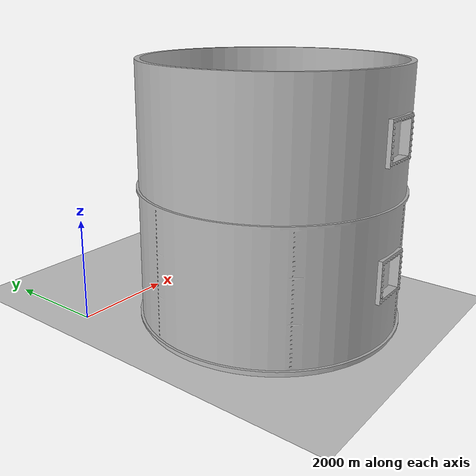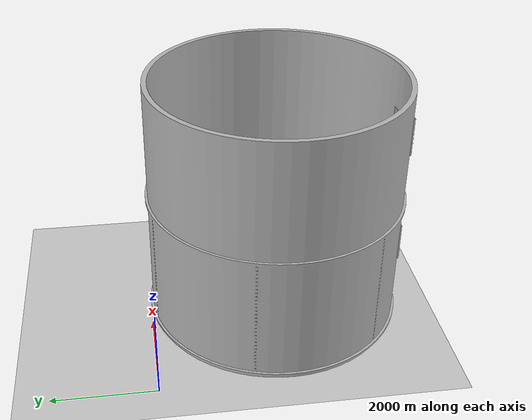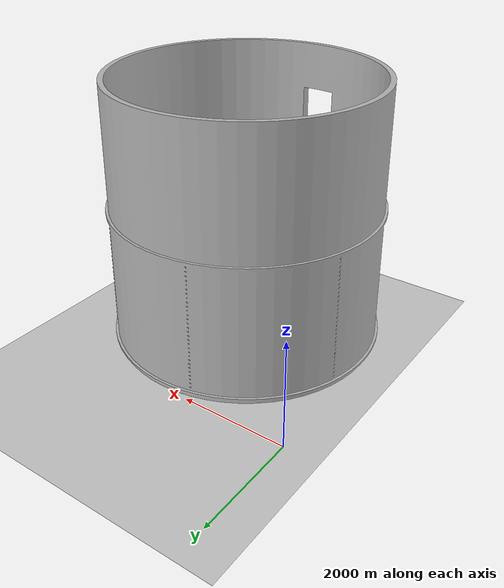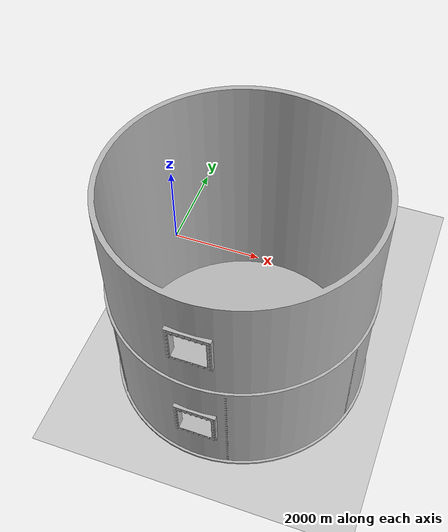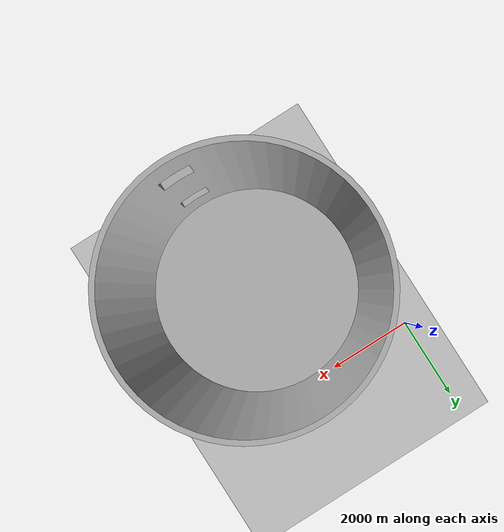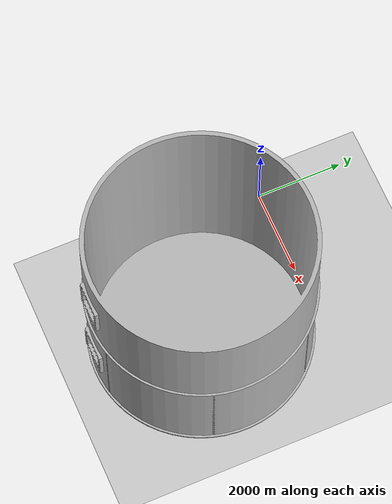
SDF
<sdf version="1.6">
 <world name="default">
  <model name="ground_plane">
   <static>1</static>
   <link name="link">
    <collision name="collision">
     <geometry><plane><normal>0 0 1</normal><size>100 100</size></plane></geometry>
     <surface><friction><ode><mu>100</mu><mu2>50</mu2></ode></friction></surface>
    </collision>
    <visual name="visual">
     <cast_shadows>0</cast_shadows>
     <geometry><plane><normal>0 0 1</normal><size>100 100</size></plane></geometry>
     <material>
      <script><uri>file://media/materials/scripts/gazebo.material</uri><name>Gazebo/Grey</name></script>
     </material>
    </visual>
   </link>
  </model>
  <model name="my_mesh">
   <pose>-4.66244 11.1038 0 1.5708 -0 0</pose>
   <static>1</static>
   <link name="body">
    <visual name="visual">
     <geometry><mesh><uri>model://tank/tank.dae</uri><scale>1 1 1</scale></mesh></geometry>
    </visual>
   </link>
  </model>
 </world>
</sdf>
